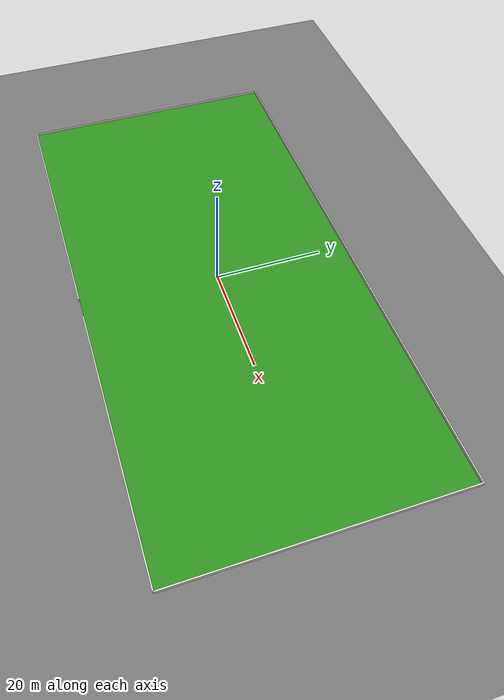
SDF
<?xml version="1.0"?>
<sdf version="1.10">
  <world name="mowing_field_5000sqm">
    <physics name="1ms" type="ignored">
      <max_step_size>0.001</max_step_size>
      <real_time_factor>1</real_time_factor>
      <real_time_update_rate>1000</real_time_update_rate>
    </physics>

    <plugin name="gz::sim::systems::Physics" filename="gz-sim-physics-system"/>
    <plugin name="gz::sim::systems::UserCommands" filename="gz-sim-user-commands-system"/>
    <plugin name="gz::sim::systems::SceneBroadcaster" filename="gz-sim-scene-broadcaster-system"/>
    <plugin name="gz::sim::systems::Contact" filename="gz-sim-contact-system"/>
    <plugin name="gz::sim::systems::Sensors" filename="gz-sim-sensors-system">
      <render_engine>ogre2</render_engine>
    </plugin>
    <!-- Required for publishing data from the simulated IMU sensor. -->
    <plugin name="gz::sim::systems::Imu" filename="gz-sim-imu-system"/>

    <gravity>0 0 -9.8</gravity>
    <magnetic_field>5.5645e-06 2.28758e-05 -4.23884e-05</magnetic_field>
    <atmosphere type="adiabatic"/>

    <scene>
      <ambient>0.4 0.4 0.4 1</ambient>
      <background>0.7 0.7 0.7 1</background>
      <shadows>true</shadows>
    </scene>

    <!-- Surrounding terrain. -->
    <model name="ground_plane">
      <static>true</static>
      <link name="link">
        <collision name="collision">
          <geometry>
            <plane>
              <normal>0 0 1</normal>
              <size>100 100</size>
            </plane>
          </geometry>
        </collision>
        <visual name="visual">
          <geometry>
            <plane>
              <normal>0 0 1</normal>
              <size>100 100</size>
            </plane>
          </geometry>
          <material>
            <ambient>0.35 0.35 0.35 1</ambient>
            <diffuse>0.45 0.45 0.45 1</diffuse>
            <specular>0.05 0.05 0.05 1</specular>
          </material>
        </visual>
      </link>
    </model>

    <!--
      5000 m^2 mowing field:
        clear inside dimensions: 100 m x 50 m
        area: 5000 m^2
        boundary height: 0.8 m
    -->
    <model name="mowing_field_5000sqm">
      <static>true</static>

      <!-- The finished floor occupies exactly 100 m x 50 m. -->
      <link name="floor">
        <pose>0 0 0.05 0 0 0</pose>
        <collision name="collision">
          <geometry><box><size>100 50 0.1</size></box></geometry>
        </collision>
        <visual name="visual">
          <geometry><box><size>100 50 0.1</size></box></geometry>
          <material>
            <ambient>0.12 0.35 0.08 1</ambient>
            <diffuse>0.18 0.55 0.12 1</diffuse>
            <specular>0.12 0.12 0.12 1</specular>
          </material>
        </visual>
      </link>

      <!-- North wall. Its extra 0.4 m closes both outside corners. -->
      <link name="north_wall">
        <pose>0 25.1 0.4 0 0 0</pose>
        <collision name="collision">
          <geometry><box><size>100.4 0.2 0.8</size></box></geometry>
        </collision>
        <visual name="visual">
          <geometry><box><size>100.4 0.2 0.8</size></box></geometry>
          <material>
            <ambient>0.75 0.75 0.72 1</ambient>
            <diffuse>0.9 0.9 0.86 1</diffuse>
            <specular>0.05 0.05 0.05 1</specular>
          </material>
        </visual>
      </link>

      <link name="west_wall">
        <pose>-50.1 0 0.4 0 0 0</pose>
        <collision name="collision">
          <geometry><box><size>0.2 50 0.8</size></box></geometry>
        </collision>
        <visual name="visual">
          <geometry><box><size>0.2 50 0.8</size></box></geometry>
          <material>
            <ambient>0.75 0.75 0.72 1</ambient>
            <diffuse>0.9 0.9 0.86 1</diffuse>
            <specular>0.05 0.05 0.05 1</specular>
          </material>
        </visual>
      </link>

      <link name="east_wall">
        <pose>50.1 0 0.4 0 0 0</pose>
        <collision name="collision">
          <geometry><box><size>0.2 50 0.8</size></box></geometry>
        </collision>
        <visual name="visual">
          <geometry><box><size>0.2 50 0.8</size></box></geometry>
          <material>
            <ambient>0.75 0.75 0.72 1</ambient>
            <diffuse>0.9 0.9 0.86 1</diffuse>
            <specular>0.05 0.05 0.05 1</specular>
          </material>
        </visual>
      </link>

      <!-- South boundary is split to leave a centered 4 m entrance. -->
      <link name="south_wall_left">
        <pose>-26.0 -25.1 0.4 0 0 0</pose>
        <collision name="collision">
          <geometry><box><size>48 0.2 0.8</size></box></geometry>
        </collision>
        <visual name="visual">
          <geometry><box><size>48 0.2 0.8</size></box></geometry>
          <material>
            <ambient>0.75 0.75 0.72 1</ambient>
            <diffuse>0.9 0.9 0.86 1</diffuse>
            <specular>0.05 0.05 0.05 1</specular>
          </material>
        </visual>
      </link>

      <link name="south_wall_right">
        <pose>26.0 -25.1 0.4 0 0 0</pose>
        <collision name="collision">
          <geometry><box><size>48 0.2 0.8</size></box></geometry>
        </collision>
        <visual name="visual">
          <geometry><box><size>48 0.2 0.8</size></box></geometry>
          <material>
            <ambient>0.75 0.75 0.72 1</ambient>
            <diffuse>0.9 0.9 0.86 1</diffuse>
            <specular>0.05 0.05 0.05 1</specular>
          </material>
        </visual>
      </link>

    </model>

    <!-- Open 5000 m^2 lawn for mowing, navigation, and coverage tests. -->

    <light name="sun" type="directional">
      <pose>0 0 10 0 0 0</pose>
      <cast_shadows>true</cast_shadows>
      <intensity>1</intensity>
      <direction>-0.5 0.1 -0.9</direction>
      <diffuse>0.8 0.8 0.8 1</diffuse>
      <specular>0.2 0.2 0.2 1</specular>
      <attenuation>
        <range>1000</range>
        <linear>0.01</linear>
        <constant>0.9</constant>
        <quadratic>0.001</quadratic>
      </attenuation>
    </light>
  </world>
</sdf>
